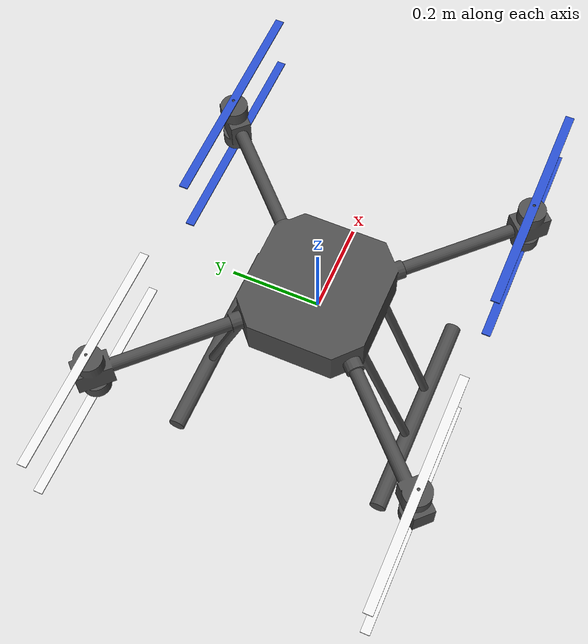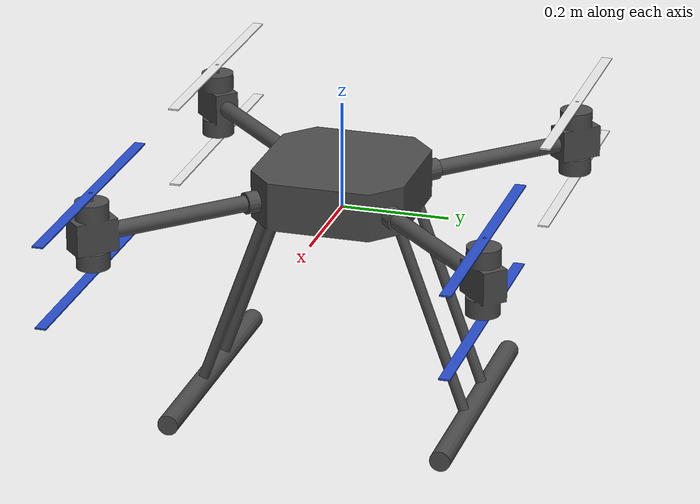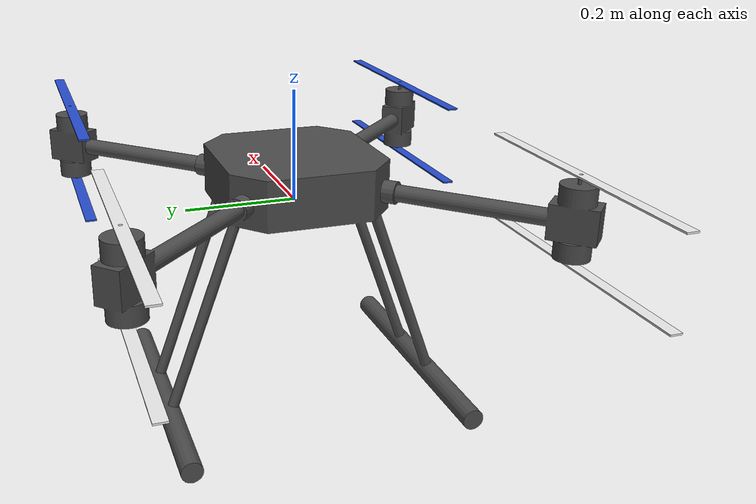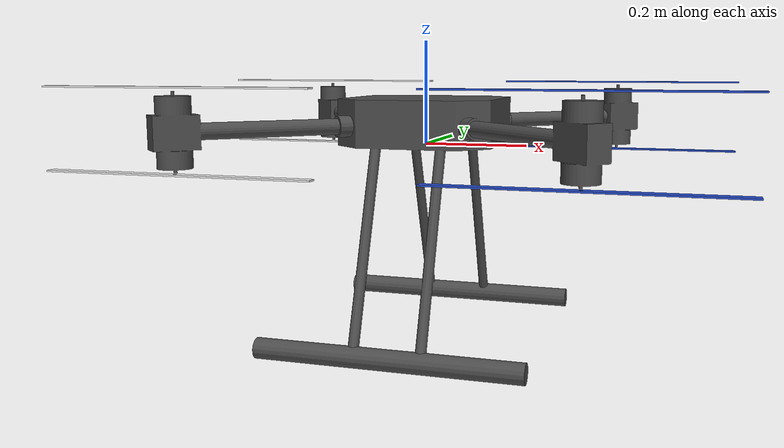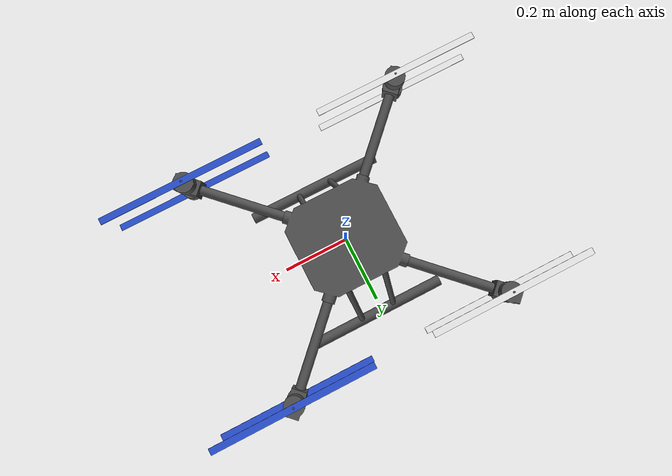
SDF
<sdf version='1.6'>
  <model name='ndt2'>
    <link name='base_link'>
      <pose frame=''>0 0 0 0 -0 0</pose>
      <inertial>
        <pose frame=''>0 0 0 0 -0 0</pose>
        <mass>9.489</mass>
        <inertia>
          <ixx>0.288861</ixx>
          <ixy>0</ixy>
          <ixz>0</ixz>
          <iyy>0.288861</iyy>
          <iyz>0</iyz>
          <izz>0.349353</izz>
        </inertia>
      </inertial>
      <collision name='base_link_inertia_collision'>
        <pose frame=''>0 0 0 0 -0 0</pose>
        <geometry>
          <mesh>
            <scale>0.001 0.001 0.001</scale>
            <uri>model://rotors_description/meshes//ndt2/chassis.stl</uri>
          </mesh>
        </geometry>
        <surface>
          <contact>
            <ode>
              <min_depth>0.001</min_depth>
              <max_vel>0</max_vel>
            </ode>
          </contact>
          <friction>
            <ode/>
          </friction>
        </surface>
      </collision>
      <visual name='base_link_inertia_visual'>
        <pose frame=''>0 0 0 0 -0 0</pose>
        <geometry>
          <mesh>
            <scale>0.001 0.001 0.001</scale>
            <uri>model://rotors_description/meshes//ndt2/chassis.stl</uri>
          </mesh>
        </geometry>
        <material>
          <script>
            <name>Gazebo/DarkGrey</name>
            <uri>file://media/materials/scripts/gazebo.material</uri>
          </script>
        </material>
      </visual>
      <velocity_decay/>
      <self_collide>1</self_collide>
      <gravity>1</gravity>
      <gravity>1</gravity>
      <velocity_decay/>
    </link>
    <link name='ndt2/imu_link'>
      <pose frame=''>0 0 0 0 -0 0</pose>
      <inertial>
        <pose frame=''>0 0 0 0 -0 0</pose>
        <mass>0.015</mass>
        <inertia>
          <ixx>1e-05</ixx>
          <ixy>0</ixy>
          <ixz>0</ixz>
          <iyy>1e-05</iyy>
          <iyz>0</iyz>
          <izz>1e-05</izz>
        </inertia>
      </inertial>
    </link>
    <joint name='ndt2/imu_joint' type='revolute'>
      <child>ndt2/imu_link</child>
      <parent>base_link</parent>
      <axis>
        <xyz>1 0 0</xyz>
        <limit>
          <lower>0</lower>
          <upper>0</upper>
          <effort>0</effort>
          <velocity>0</velocity>
        </limit>
        <dynamics>
          <spring_reference>0</spring_reference>
          <spring_stiffness>0</spring_stiffness>
        </dynamics>
        <use_parent_model_frame>1</use_parent_model_frame>
      </axis>
    </joint>
    <link name='arm_1'>
      <pose frame=''>0.224433 0.234052 0.04 0 -0 0</pose>
      <inertial>
        <pose frame=''>0.083 0.083 0 0 -0 0</pose>
        <mass>0.63</mass>
        <inertia>
          <ixx>0.006258</ixx>
          <ixy>0</ixy>
          <ixz>0</ixz>
          <iyy>0.006258</iyy>
          <iyz>0</iyz>
          <izz>0.012138</izz>
        </inertia>
      </inertial>
      <collision name='arm_1_collision'>
        <pose frame=''>-0.224433 -0.234052 -0.04 0 -0 0</pose>
        <geometry>
          <mesh>
            <scale>0.001 0.001 0.001</scale>
            <uri>model://rotors_description/meshes/ndt2/arm_1.stl</uri>
          </mesh>
        </geometry>
        <surface>
          <contact>
            <ode/>
          </contact>
          <friction>
            <ode>
              <mu>0.2</mu>
              <mu2>0.2</mu2>
            </ode>
          </friction>
        </surface>
      </collision>
      <visual name='arm_1_visual'>
        <pose frame=''>-0.224433 -0.234052 -0.04 0 -0 0</pose>
        <geometry>
          <mesh>
            <scale>0.001 0.001 0.001</scale>
            <uri>model://rotors_description/meshes/ndt2/arm_1.stl</uri>
          </mesh>
        </geometry>
        <material>
          <script>
            <name>DarkGrey</name>
            <uri>file://media/materials/scripts/gazebo.material</uri>
          </script>
        </material>
      </visual>
      <gravity>1</gravity>
      <velocity_decay/>
      <self_collide>1</self_collide>
    </link>
    <joint name='tilt_motor_1' type='revolute'>
      <child>arm_1</child>
      <parent>base_link</parent>
      <axis>
        <xyz>-0.707107 -0.707107 0</xyz>
        <limit>
          <lower>-1.57</lower>
          <upper>1.57</upper>
          <effort>30</effort>
          <velocity>1</velocity>
        </limit>
        <dynamics>
          <spring_reference>0</spring_reference>
          <spring_stiffness>0</spring_stiffness>
        </dynamics>
        <use_parent_model_frame>1</use_parent_model_frame>
      </axis>
    </joint>
    <link name='rotor_0'>
      <pose frame=''>0.345433 0.355052 0.115 0 -0 0</pose>
      <inertial>
        <pose frame=''>0 0 0 0 -0 0</pose>
        <mass>0.005</mass>
        <inertia>
          <ixx>9.75e-07</ixx>
          <ixy>0</ixy>
          <ixz>0</ixz>
          <iyy>0.00107954</iyy>
          <iyz>0</iyz>
          <izz>0.00108044</izz>
        </inertia>
      </inertial>
      <collision name='rotor_0_collision'>
        <pose frame=''>0 0 0 0 -0 0</pose>
        <geometry>
          <cylinder>
            <length>0.005</length>
            <radius>0.2545</radius>
          </cylinder>
        </geometry>
        <surface>
          <contact>
            <ode/>
          </contact>
          <friction>
            <ode/>
          </friction>
        </surface>
      </collision>
      <visual name='rotor_0_visual'>
        <pose frame=''>0 0 0 0 -0 0</pose>
        <geometry>
          <mesh>
            <scale>0.001 0.001 0.001</scale>
            <uri>model://rotors_description/meshes/ndt2/prop.stl</uri>
          </mesh>
        </geometry>
        <material>
          <script>
            <name>Gazebo/Blue</name>
            <uri>file://media/materials/scripts/gazebo.material</uri>
          </script>
        </material>
      </visual>
      <gravity>1</gravity>
      <velocity_decay/>
    </link>
    <joint name='rotor_0_joint' type='revolute'>
      <child>rotor_0</child>
      <parent>arm_1</parent>
      <axis>
        <xyz>0 0 1</xyz>
        <limit>
          <lower>-1e+16</lower>
          <upper>1e+16</upper>
        </limit>
        <dynamics>
          <spring_reference>0</spring_reference>
          <spring_stiffness>0</spring_stiffness>
        </dynamics>
        <use_parent_model_frame>1</use_parent_model_frame>
      </axis>
    </joint>
    <link name='rotor_4'>
      <pose frame=''>0.345433 0.355052 -0.035 0 -0 0</pose>
      <inertial>
        <pose frame=''>0 0 0 0 -0 0</pose>
        <mass>0.005</mass>
        <inertia>
          <ixx>9.75e-07</ixx>
          <ixy>0</ixy>
          <ixz>0</ixz>
          <iyy>0.00107954</iyy>
          <iyz>0</iyz>
          <izz>0.00108044</izz>
        </inertia>
      </inertial>
      <collision name='rotor_4_collision'>
        <pose frame=''>0 0 0 0 -0 0</pose>
        <geometry>
          <cylinder>
            <length>0.005</length>
            <radius>0.2545</radius>
          </cylinder>
        </geometry>
        <surface>
          <contact>
            <ode/>
          </contact>
          <friction>
            <ode/>
          </friction>
        </surface>
      </collision>
      <visual name='rotor_4_visual'>
        <pose frame=''>0 0 0 0 -0 0</pose>
        <geometry>
          <mesh>
            <scale>0.001 0.001 0.001</scale>
            <uri>model://rotors_description/meshes/ndt2/prop.stl</uri>
          </mesh>
        </geometry>
        <material>
          <script>
            <name>Gazebo/Blue</name>
            <uri>file://media/materials/scripts/gazebo.material</uri>
          </script>
        </material>
      </visual>
      <gravity>1</gravity>
      <velocity_decay/>
    </link>
    <joint name='rotor_4_joint' type='revolute'>
      <child>rotor_4</child>
      <parent>arm_1</parent>
      <axis>
        <xyz>0 0 1</xyz>
        <limit>
          <lower>-1e+16</lower>
          <upper>1e+16</upper>
        </limit>
        <dynamics>
          <spring_reference>0</spring_reference>
          <spring_stiffness>0</spring_stiffness>
        </dynamics>
        <use_parent_model_frame>1</use_parent_model_frame>
      </axis>
    </joint>
    <link name='arm_2'>
      <pose frame=''>-0.224433 0.234052 0.04 0 -0 0</pose>
      <inertial>
        <pose frame=''>-0.083 0.083 0 0 -0 0</pose>
        <mass>0.63</mass>
        <inertia>
          <ixx>0.006258</ixx>
          <ixy>0</ixy>
          <ixz>0</ixz>
          <iyy>0.006258</iyy>
          <iyz>0</iyz>
          <izz>0.012138</izz>
        </inertia>
      </inertial>
      <collision name='arm_2_collision'>
        <pose frame=''>0.224433 -0.234052 -0.04 0 -0 0</pose>
        <geometry>
          <mesh>
            <scale>0.001 0.001 0.001</scale>
            <uri>model://rotors_description/meshes/ndt2/arm_2.stl</uri>
          </mesh>
        </geometry>
        <surface>
          <contact>
            <ode/>
          </contact>
          <friction>
            <ode>
              <mu>0.2</mu>
              <mu2>0.2</mu2>
            </ode>
          </friction>
        </surface>
      </collision>
      <visual name='arm_2_visual'>
        <pose frame=''>0.224433 -0.234052 -0.04 0 -0 0</pose>
        <geometry>
          <mesh>
            <scale>0.001 0.001 0.001</scale>
            <uri>model://rotors_description/meshes/ndt2/arm_2.stl</uri>
          </mesh>
        </geometry>
        <material>
          <script>
            <name>DarkGrey</name>
            <uri>file://media/materials/scripts/gazebo.material</uri>
          </script>
        </material>
      </visual>
      <gravity>1</gravity>
      <velocity_decay/>
      <self_collide>1</self_collide>
    </link>
    <joint name='tilt_motor_2' type='revolute'>
      <child>arm_2</child>
      <parent>base_link</parent>
      <axis>
        <xyz>-0.707107 0.707107 0</xyz>
        <limit>
          <lower>-1.57</lower>
          <upper>1.57</upper>
          <effort>30</effort>
          <velocity>1</velocity>
        </limit>
        <dynamics>
          <spring_reference>0</spring_reference>
          <spring_stiffness>0</spring_stiffness>
        </dynamics>
        <use_parent_model_frame>1</use_parent_model_frame>
      </axis>
    </joint>
    <link name='rotor_1'>
      <pose frame=''>-0.345433 0.355052 0.115 0 -0 0</pose>
      <inertial>
        <pose frame=''>0 0 0 0 -0 0</pose>
        <mass>0.005</mass>
        <inertia>
          <ixx>9.75e-07</ixx>
          <ixy>0</ixy>
          <ixz>0</ixz>
          <iyy>0.00107954</iyy>
          <iyz>0</iyz>
          <izz>0.00108044</izz>
        </inertia>
      </inertial>
      <collision name='rotor_1_collision'>
        <pose frame=''>0 0 0 0 -0 0</pose>
        <geometry>
          <cylinder>
            <length>0.005</length>
            <radius>0.2545</radius>
          </cylinder>
        </geometry>
        <surface>
          <contact>
            <ode/>
          </contact>
          <friction>
            <ode/>
          </friction>
        </surface>
      </collision>
      <visual name='rotor_1_visual'>
        <pose frame=''>0 0 0 0 -0 0</pose>
        <geometry>
          <mesh>
            <scale>0.001 0.001 0.001</scale>
            <uri>model://rotors_description/meshes/ndt2/prop.stl</uri>
          </mesh>
        </geometry>
        <material>
          <script>
            <name>Gazebo/White</name>
            <uri>file://media/materials/scripts/gazebo.material</uri>
          </script>
        </material>
      </visual>
      <gravity>1</gravity>
      <velocity_decay/>
    </link>
    <joint name='rotor_1_joint' type='revolute'>
      <child>rotor_1</child>
      <parent>arm_2</parent>
      <axis>
        <xyz>0 0 1</xyz>
        <limit>
          <lower>-1e+16</lower>
          <upper>1e+16</upper>
        </limit>
        <dynamics>
          <spring_reference>0</spring_reference>
          <spring_stiffness>0</spring_stiffness>
        </dynamics>
        <use_parent_model_frame>1</use_parent_model_frame>
      </axis>
    </joint>
    <link name='rotor_5'>
      <pose frame=''>-0.345433 0.355052 -0.035 0 -0 0</pose>
      <inertial>
        <pose frame=''>0 0 0 0 -0 0</pose>
        <mass>0.005</mass>
        <inertia>
          <ixx>9.75e-07</ixx>
          <ixy>0</ixy>
          <ixz>0</ixz>
          <iyy>0.00107954</iyy>
          <iyz>0</iyz>
          <izz>0.00108044</izz>
        </inertia>
      </inertial>
      <collision name='rotor_5_collision'>
        <pose frame=''>0 0 0 0 -0 0</pose>
        <geometry>
          <cylinder>
            <length>0.005</length>
            <radius>0.2545</radius>
          </cylinder>
        </geometry>
        <surface>
          <contact>
            <ode/>
          </contact>
          <friction>
            <ode/>
          </friction>
        </surface>
      </collision>
      <visual name='rotor_5_visual'>
        <pose frame=''>0 0 0 0 -0 0</pose>
        <geometry>
          <mesh>
            <scale>0.001 0.001 0.001</scale>
            <uri>model://rotors_description/meshes/ndt2/prop.stl</uri>
          </mesh>
        </geometry>
        <material>
          <script>
            <name>Gazebo/White</name>
            <uri>file://media/materials/scripts/gazebo.material</uri>
          </script>
        </material>
      </visual>
      <gravity>1</gravity>
      <velocity_decay/>
    </link>
    <joint name='rotor_5_joint' type='revolute'>
      <child>rotor_5</child>
      <parent>arm_2</parent>
      <axis>
        <xyz>0 0 1</xyz>
        <limit>
          <lower>-1e+16</lower>
          <upper>1e+16</upper>
        </limit>
        <dynamics>
          <spring_reference>0</spring_reference>
          <spring_stiffness>0</spring_stiffness>
        </dynamics>
        <use_parent_model_frame>1</use_parent_model_frame>
      </axis>
    </joint>
    <link name='arm_3'>
      <pose frame=''>-0.224433 -0.234052 0.04 0 -0 0</pose>
      <inertial>
        <pose frame=''>-0.083 -0.083 0 0 -0 0</pose>
        <mass>0.63</mass>
        <inertia>
          <ixx>0.006258</ixx>
          <ixy>0</ixy>
          <ixz>0</ixz>
          <iyy>0.006258</iyy>
          <iyz>0</iyz>
          <izz>0.012138</izz>
        </inertia>
      </inertial>
      <collision name='arm_3_collision'>
        <pose frame=''>0.224433 0.234052 -0.04 0 -0 0</pose>
        <geometry>
          <mesh>
            <scale>0.001 0.001 0.001</scale>
            <uri>model://rotors_description/meshes/ndt2/arm_3.stl</uri>
          </mesh>
        </geometry>
        <surface>
          <contact>
            <ode/>
          </contact>
          <friction>
            <ode>
              <mu>0.2</mu>
              <mu2>0.2</mu2>
            </ode>
          </friction>
        </surface>
      </collision>
      <visual name='arm_3_visual'>
        <pose frame=''>0.224433 0.234052 -0.04 0 -0 0</pose>
        <geometry>
          <mesh>
            <scale>0.001 0.001 0.001</scale>
            <uri>model://rotors_description/meshes/ndt2/arm_3.stl</uri>
          </mesh>
        </geometry>
        <material>
          <script>
            <name>DarkGrey</name>
            <uri>file://media/materials/scripts/gazebo.material</uri>
          </script>
        </material>
      </visual>
      <gravity>1</gravity>
      <velocity_decay/>
      <self_collide>1</self_collide>
    </link>
    <joint name='tilt_motor_3' type='revolute'>
      <child>arm_3</child>
      <parent>base_link</parent>
      <axis>
        <xyz>0.707107 0.707107 0</xyz>
        <limit>
          <lower>-1.57</lower>
          <upper>1.57</upper>
          <effort>30</effort>
          <velocity>1</velocity>
        </limit>
        <dynamics>
          <spring_reference>0</spring_reference>
          <spring_stiffness>0</spring_stiffness>
        </dynamics>
        <use_parent_model_frame>1</use_parent_model_frame>
      </axis>
    </joint>
    <link name='rotor_2'>
      <pose frame=''>-0.345433 -0.355052 0.115 0 -0 0</pose>
      <inertial>
        <pose frame=''>0 0 0 0 -0 0</pose>
        <mass>0.005</mass>
        <inertia>
          <ixx>9.75e-07</ixx>
          <ixy>0</ixy>
          <ixz>0</ixz>
          <iyy>0.00107954</iyy>
          <iyz>0</iyz>
          <izz>0.00108044</izz>
        </inertia>
      </inertial>
      <collision name='rotor_2_collision'>
        <pose frame=''>0 0 0 0 -0 0</pose>
        <geometry>
          <cylinder>
            <length>0.005</length>
            <radius>0.2545</radius>
          </cylinder>
        </geometry>
        <surface>
          <contact>
            <ode/>
          </contact>
          <friction>
            <ode/>
          </friction>
        </surface>
      </collision>
      <visual name='rotor_2_visual'>
        <pose frame=''>0 0 0 0 -0 0</pose>
        <geometry>
          <mesh>
            <scale>0.001 0.001 0.001</scale>
            <uri>model://rotors_description/meshes/ndt2/prop.stl</uri>
          </mesh>
        </geometry>
        <material>
          <script>
            <name>Gazebo/White</name>
            <uri>file://media/materials/scripts/gazebo.material</uri>
          </script>
        </material>
      </visual>
      <gravity>1</gravity>
      <velocity_decay/>
    </link>
    <joint name='rotor_2_joint' type='revolute'>
      <child>rotor_2</child>
      <parent>arm_3</parent>
      <axis>
        <xyz>0 0 1</xyz>
        <limit>
          <lower>-1e+16</lower>
          <upper>1e+16</upper>
        </limit>
        <dynamics>
          <spring_reference>0</spring_reference>
          <spring_stiffness>0</spring_stiffness>
        </dynamics>
        <use_parent_model_frame>1</use_parent_model_frame>
      </axis>
    </joint>
    <link name='rotor_6'>
      <pose frame=''>-0.345433 -0.355052 -0.035 0 -0 0</pose>
      <inertial>
        <pose frame=''>0 0 0 0 -0 0</pose>
        <mass>0.005</mass>
        <inertia>
          <ixx>9.75e-07</ixx>
          <ixy>0</ixy>
          <ixz>0</ixz>
          <iyy>0.00107954</iyy>
          <iyz>0</iyz>
          <izz>0.00108044</izz>
        </inertia>
      </inertial>
      <collision name='rotor_6_collision'>
        <pose frame=''>0 0 0 0 -0 0</pose>
        <geometry>
          <cylinder>
            <length>0.005</length>
            <radius>0.2545</radius>
          </cylinder>
        </geometry>
        <surface>
          <contact>
            <ode/>
          </contact>
          <friction>
            <ode/>
          </friction>
        </surface>
      </collision>
      <visual name='rotor_6_visual'>
        <pose frame=''>0 0 0 0 -0 0</pose>
        <geometry>
          <mesh>
            <scale>0.001 0.001 0.001</scale>
            <uri>model://rotors_description/meshes/ndt2/prop.stl</uri>
          </mesh>
        </geometry>
        <material>
          <script>
            <name>Gazebo/White</name>
            <uri>file://media/materials/scripts/gazebo.material</uri>
          </script>
        </material>
      </visual>
      <gravity>1</gravity>
      <velocity_decay/>
    </link>
    <joint name='rotor_6_joint' type='revolute'>
      <child>rotor_6</child>
      <parent>arm_3</parent>
      <axis>
        <xyz>0 0 1</xyz>
        <limit>
          <lower>-1e+16</lower>
          <upper>1e+16</upper>
        </limit>
        <dynamics>
          <spring_reference>0</spring_reference>
          <spring_stiffness>0</spring_stiffness>
        </dynamics>
        <use_parent_model_frame>1</use_parent_model_frame>
      </axis>
    </joint>
    <link name='arm_4'>
      <pose frame=''>0.224433 -0.234052 0.04 0 -0 0</pose>
      <inertial>
        <pose frame=''>0.083 -0.083 0 0 -0 0</pose>
        <mass>0.63</mass>
        <inertia>
          <ixx>0.006258</ixx>
          <ixy>0</ixy>
          <ixz>0</ixz>
          <iyy>0.006258</iyy>
          <iyz>0</iyz>
          <izz>0.012138</izz>
        </inertia>
      </inertial>
      <collision name='arm_4_collision'>
        <pose frame=''>-0.224433 0.234052 -0.04 0 -0 0</pose>
        <geometry>
          <mesh>
            <scale>0.001 0.001 0.001</scale>
            <uri>model://rotors_description/meshes/ndt2/arm_4.stl</uri>
          </mesh>
        </geometry>
        <surface>
          <contact>
            <ode/>
          </contact>
          <friction>
            <ode>
              <mu>0.2</mu>
              <mu2>0.2</mu2>
            </ode>
          </friction>
        </surface>
      </collision>
      <visual name='arm_4_visual'>
        <pose frame=''>-0.224433 0.234052 -0.04 0 -0 0</pose>
        <geometry>
          <mesh>
            <scale>0.001 0.001 0.001</scale>
            <uri>model://rotors_description/meshes/ndt2/arm_4.stl</uri>
          </mesh>
        </geometry>
        <material>
          <script>
            <name>DarkGrey</name>
            <uri>file://media/materials/scripts/gazebo.material</uri>
          </script>
        </material>
      </visual>
      <gravity>1</gravity>
      <velocity_decay/>
      <self_collide>1</self_collide>
    </link>
    <joint name='tilt_motor_4' type='revolute'>
      <child>arm_4</child>
      <parent>base_link</parent>
      <axis>
        <xyz>-0.707107 0.707107 0</xyz>
        <limit>
          <lower>-1.57</lower>
          <upper>1.57</upper>
          <effort>30</effort>
          <velocity>1</velocity>
        </limit>
        <dynamics>
          <spring_reference>0</spring_reference>
          <spring_stiffness>0</spring_stiffness>
        </dynamics>
        <use_parent_model_frame>1</use_parent_model_frame>
      </axis>
    </joint>
    <link name='rotor_3'>
      <pose frame=''>0.345433 -0.355052 0.115 0 -0 0</pose>
      <inertial>
        <pose frame=''>0 0 0 0 -0 0</pose>
        <mass>0.005</mass>
        <inertia>
          <ixx>9.75e-07</ixx>
          <ixy>0</ixy>
          <ixz>0</ixz>
          <iyy>0.00107954</iyy>
          <iyz>0</iyz>
          <izz>0.00108044</izz>
        </inertia>
      </inertial>
      <collision name='rotor_3_collision'>
        <pose frame=''>0 0 0 0 -0 0</pose>
        <geometry>
          <cylinder>
            <length>0.005</length>
            <radius>0.2545</radius>
          </cylinder>
        </geometry>
        <surface>
          <contact>
            <ode/>
          </contact>
          <friction>
            <ode/>
          </friction>
        </surface>
      </collision>
      <visual name='rotor_3_visual'>
        <pose frame=''>0 0 0 0 -0 0</pose>
        <geometry>
          <mesh>
            <scale>0.001 0.001 0.001</scale>
            <uri>model://rotors_description/meshes/ndt2/prop.stl</uri>
          </mesh>
        </geometry>
        <material>
          <script>
            <name>Gazebo/Blue</name>
            <uri>file://media/materials/scripts/gazebo.material</uri>
          </script>
        </material>
      </visual>
      <gravity>1</gravity>
      <velocity_decay/>
    </link>
    <joint name='rotor_3_joint' type='revolute'>
      <child>rotor_3</child>
      <parent>arm_4</parent>
      <axis>
        <xyz>0 0 1</xyz>
        <limit>
          <lower>-1e+16</lower>
          <upper>1e+16</upper>
        </limit>
        <dynamics>
          <spring_reference>0</spring_reference>
          <spring_stiffness>0</spring_stiffness>
        </dynamics>
        <use_parent_model_frame>1</use_parent_model_frame>
      </axis>
    </joint>
    <link name='rotor_7'>
      <pose frame=''>0.345433 -0.355052 -0.035 0 -0 0</pose>
      <inertial>
        <pose frame=''>0 0 0 0 -0 0</pose>
        <mass>0.005</mass>
        <inertia>
          <ixx>9.75e-07</ixx>
          <ixy>0</ixy>
          <ixz>0</ixz>
          <iyy>0.00107954</iyy>
          <iyz>0</iyz>
          <izz>0.00108044</izz>
        </inertia>
      </inertial>
      <collision name='rotor_7_collision'>
        <pose frame=''>0 0 0 0 -0 0</pose>
        <geometry>
          <cylinder>
            <length>0.005</length>
            <radius>0.2545</radius>
          </cylinder>
        </geometry>
        <surface>
          <contact>
            <ode/>
          </contact>
          <friction>
            <ode/>
          </friction>
        </surface>
      </collision>
      <visual name='rotor_7_visual'>
        <pose frame=''>0 0 0 0 -0 0</pose>
        <geometry>
          <mesh>
            <scale>0.001 0.001 0.001</scale>
            <uri>model://rotors_description/meshes/ndt2/prop.stl</uri>
          </mesh>
        </geometry>
        <material>
          <script>
            <name>Gazebo/Blue</name>
            <uri>file://media/materials/scripts/gazebo.material</uri>
          </script>
        </material>
      </visual>
      <gravity>1</gravity>
      <velocity_decay/>
    </link>
    <joint name='rotor_7_joint' type='revolute'>
      <child>rotor_7</child>
      <parent>arm_4</parent>
      <axis>
        <xyz>0 0 1</xyz>
        <limit>
          <lower>-1e+16</lower>
          <upper>1e+16</upper>
        </limit>
        <dynamics>
          <spring_reference>0</spring_reference>
          <spring_stiffness>0</spring_stiffness>
        </dynamics>
        <use_parent_model_frame>1</use_parent_model_frame>
      </axis>
    </joint>
    <plugin name='control' filename='libgazebo_ros_control.so'/>
    <plugin name='rosbag' filename='libgazebo_multirotor_base_plugin.so'>
      <robotNamespace>ndt2</robotNamespace>
      <linkName>base_link</linkName>
      <rotorVelocitySlowdownSim>10</rotorVelocitySlowdownSim>
    </plugin>
    <plugin name='0_motor_model' filename='libgazebo_motor_model.so'>
      <robotNamespace>ndt2</robotNamespace>
      <jointName>rotor_0_joint</jointName>
      <linkName>rotor_0</linkName>
      <turningDirection>cw</turningDirection>
      <timeConstantUp>0.0125</timeConstantUp>
      <timeConstantDown>0.025</timeConstantDown>
      <maxRotVelocity>5000</maxRotVelocity>
      <motorConstant>0.00019065</motorConstant>
      <momentConstant>1.333e-06</momentConstant>
      <commandSubTopic>/gazebo/command/motor_speed</commandSubTopic>
      <motorNumber>0</motorNumber>
      <rotorDragCoefficient>0.000175</rotorDragCoefficient>
      <rollingMomentCoefficient>1e-06</rollingMomentCoefficient>
      <motorSpeedPubTopic>/motor_speed/0</motorSpeedPubTopic>
      <rotorVelocitySlowdownSim>10</rotorVelocitySlowdownSim>
    </plugin>
    <plugin name='1_motor_model' filename='libgazebo_motor_model.so'>
      <robotNamespace>ndt2</robotNamespace>
      <jointName>rotor_1_joint</jointName>
      <linkName>rotor_1</linkName>
      <turningDirection>cw</turningDirection>
      <timeConstantUp>0.0125</timeConstantUp>
      <timeConstantDown>0.025</timeConstantDown>
      <maxRotVelocity>5000</maxRotVelocity>
      <motorConstant>0.00019065</motorConstant>
      <momentConstant>1.333e-06</momentConstant>
      <commandSubTopic>/gazebo/command/motor_speed</commandSubTopic>
      <motorNumber>1</motorNumber>
      <rotorDragCoefficient>0.000175</rotorDragCoefficient>
      <rollingMomentCoefficient>1e-06</rollingMomentCoefficient>
      <motorSpeedPubTopic>/motor_speed/1</motorSpeedPubTopic>
      <rotorVelocitySlowdownSim>10</rotorVelocitySlowdownSim>
    </plugin>
    <plugin name='2_motor_model' filename='libgazebo_motor_model.so'>
      <robotNamespace>ndt2</robotNamespace>
      <jointName>rotor_2_joint</jointName>
      <linkName>rotor_2</linkName>
      <turningDirection>cw</turningDirection>
      <timeConstantUp>0.0125</timeConstantUp>
      <timeConstantDown>0.025</timeConstantDown>
      <maxRotVelocity>5000</maxRotVelocity>
      <motorConstant>0.00019065</motorConstant>
      <momentConstant>1.333e-06</momentConstant>
      <commandSubTopic>/gazebo/command/motor_speed</commandSubTopic>
      <motorNumber>2</motorNumber>
      <rotorDragCoefficient>0.000175</rotorDragCoefficient>
      <rollingMomentCoefficient>1e-06</rollingMomentCoefficient>
      <motorSpeedPubTopic>/motor_speed/2</motorSpeedPubTopic>
      <rotorVelocitySlowdownSim>10</rotorVelocitySlowdownSim>
    </plugin>
    <plugin name='3_motor_model' filename='libgazebo_motor_model.so'>
      <robotNamespace>ndt2</robotNamespace>
      <jointName>rotor_3_joint</jointName>
      <linkName>rotor_3</linkName>
      <turningDirection>cw</turningDirection>
      <timeConstantUp>0.0125</timeConstantUp>
      <timeConstantDown>0.025</timeConstantDown>
      <maxRotVelocity>5000</maxRotVelocity>
      <motorConstant>0.00019065</motorConstant>
      <momentConstant>1.333e-06</momentConstant>
      <commandSubTopic>/gazebo/command/motor_speed</commandSubTopic>
      <motorNumber>3</motorNumber>
      <rotorDragCoefficient>0.000175</rotorDragCoefficient>
      <rollingMomentCoefficient>1e-06</rollingMomentCoefficient>
      <motorSpeedPubTopic>/motor_speed/3</motorSpeedPubTopic>
      <rotorVelocitySlowdownSim>10</rotorVelocitySlowdownSim>
    </plugin>
    <plugin name='4_motor_model' filename='libgazebo_motor_model.so'>
      <robotNamespace>ndt2</robotNamespace>
      <jointName>rotor_4_joint</jointName>
      <linkName>rotor_4</linkName>
      <turningDirection>ccw</turningDirection>
      <timeConstantUp>0.0125</timeConstantUp>
      <timeConstantDown>0.025</timeConstantDown>
      <maxRotVelocity>5000</maxRotVelocity>
      <motorConstant>0.00019065</motorConstant>
      <momentConstant>1.333e-06</momentConstant>
      <commandSubTopic>/gazebo/command/motor_speed</commandSubTopic>
      <motorNumber>4</motorNumber>
      <rotorDragCoefficient>0.000175</rotorDragCoefficient>
      <rollingMomentCoefficient>1e-06</rollingMomentCoefficient>
      <motorSpeedPubTopic>/motor_speed/4</motorSpeedPubTopic>
      <rotorVelocitySlowdownSim>10</rotorVelocitySlowdownSim>
    </plugin>
    <plugin name='5_motor_model' filename='libgazebo_motor_model.so'>
      <robotNamespace>ndt2</robotNamespace>
      <jointName>rotor_5_joint</jointName>
      <linkName>rotor_5</linkName>
      <turningDirection>ccw</turningDirection>
      <timeConstantUp>0.0125</timeConstantUp>
      <timeConstantDown>0.025</timeConstantDown>
      <maxRotVelocity>5000</maxRotVelocity>
      <motorConstant>0.00019065</motorConstant>
      <momentConstant>1.333e-06</momentConstant>
      <commandSubTopic>/gazebo/command/motor_speed</commandSubTopic>
      <motorNumber>5</motorNumber>
      <rotorDragCoefficient>0.000175</rotorDragCoefficient>
      <rollingMomentCoefficient>1e-06</rollingMomentCoefficient>
      <motorSpeedPubTopic>/motor_speed/5</motorSpeedPubTopic>
      <rotorVelocitySlowdownSim>10</rotorVelocitySlowdownSim>
    </plugin>
    <plugin name='6_motor_model' filename='libgazebo_motor_model.so'>
      <robotNamespace>ndt2</robotNamespace>
      <jointName>rotor_6_joint</jointName>
      <linkName>rotor_6</linkName>
      <turningDirection>ccw</turningDirection>
      <timeConstantUp>0.0125</timeConstantUp>
      <timeConstantDown>0.025</timeConstantDown>
      <maxRotVelocity>5000</maxRotVelocity>
      <motorConstant>0.00019065</motorConstant>
      <momentConstant>1.333e-06</momentConstant>
      <commandSubTopic>/gazebo/command/motor_speed</commandSubTopic>
      <motorNumber>6</motorNumber>
      <rotorDragCoefficient>0.000175</rotorDragCoefficient>
      <rollingMomentCoefficient>1e-06</rollingMomentCoefficient>
      <motorSpeedPubTopic>/motor_speed/6</motorSpeedPubTopic>
      <rotorVelocitySlowdownSim>10</rotorVelocitySlowdownSim>
    </plugin>
    <plugin name='7_motor_model' filename='libgazebo_motor_model.so'>
      <robotNamespace>ndt2</robotNamespace>
      <jointName>rotor_7_joint</jointName>
      <linkName>rotor_7</linkName>
      <turningDirection>ccw</turningDirection>
      <timeConstantUp>0.0125</timeConstantUp>
      <timeConstantDown>0.025</timeConstantDown>
      <maxRotVelocity>5000</maxRotVelocity>
      <motorConstant>0.00019065</motorConstant>
      <momentConstant>1.333e-06</momentConstant>
      <commandSubTopic>/gazebo/command/motor_speed</commandSubTopic>
      <motorNumber>7</motorNumber>
      <rotorDragCoefficient>0.000175</rotorDragCoefficient>
      <rollingMomentCoefficient>1e-06</rollingMomentCoefficient>
      <motorSpeedPubTopic>/motor_speed/7</motorSpeedPubTopic>
      <rotorVelocitySlowdownSim>10</rotorVelocitySlowdownSim>
    </plugin>
    <plugin name='gps_plugin' filename='libgazebo_gps_plugin.so'>
      <robotNamespace>ndt2</robotNamespace>
      <gpsNoise>1</gpsNoise>
    </plugin>
    <plugin name='magnetometer_plugin' filename='libgazebo_magnetometer_plugin.so'>
      <robotNamespace>ndt2</robotNamespace>
      <pubRate>100</pubRate>
      <noiseDensity>0.0004</noiseDensity>
      <randomWalk>6.4e-06</randomWalk>
      <biasCorrelationTime>600</biasCorrelationTime>
      <magTopic>/mag</magTopic>
    </plugin>
    <plugin name='barometer_plugin' filename='libgazebo_barometer_plugin.so'>
      <robotNamespace>ndt2</robotNamespace>
      <pubRate>50</pubRate>
      <baroTopic>/baro</baroTopic>
    </plugin>
    <plugin name='ros_interface' filename='libgazebo_ros_interface.so'>
      <robotNamespace>ndt2</robotNamespace>
      <imuSubTopic>/imu</imuSubTopic>
      <gpsSubTopic>/gps</gpsSubTopic>
      <odomFrame>NED</odomFrame>
      <motorSize>8</motorSize>
      <motorSpeedCommandPubTopic>/gazebo/command/motor_speed</motorSpeedCommandPubTopic>
      <control_channels>
        <channel name='rotor1'>
          <input_index>0</input_index>
          <input_offset>0</input_offset>
          <input_scaling>1000</input_scaling>
          <zero_position_disarmed>0</zero_position_disarmed>
          <zero_position_armed>100</zero_position_armed>
          <joint_control_type>velocity</joint_control_type>
        </channel>
        <channel name='rotor2'>
          <input_index>1</input_index>
          <input_offset>0</input_offset>
          <input_scaling>1000</input_scaling>
          <zero_position_disarmed>0</zero_position_disarmed>
          <zero_position_armed>100</zero_position_armed>
          <joint_control_type>velocity</joint_control_type>
        </channel>
        <channel name='rotor3'>
          <input_index>2</input_index>
          <input_offset>0</input_offset>
          <input_scaling>1000</input_scaling>
          <zero_position_disarmed>0</zero_position_disarmed>
          <zero_position_armed>100</zero_position_armed>
          <joint_control_type>velocity</joint_control_type>
        </channel>
        <channel name='rotor4'>
          <input_index>3</input_index>
          <input_offset>0</input_offset>
          <input_scaling>1000</input_scaling>
          <zero_position_disarmed>0</zero_position_disarmed>
          <zero_position_armed>100</zero_position_armed>
          <joint_control_type>velocity</joint_control_type>
        </channel>
        <channel name='rotor5'>
          <input_index>4</input_index>
          <input_offset>1</input_offset>
          <input_scaling>324.6</input_scaling>
          <zero_position_disarmed>0</zero_position_disarmed>
          <zero_position_armed>0</zero_position_armed>
          <joint_control_type>velocity</joint_control_type>
          <joint_control_pid>
            <p>0.1</p>
            <i>0</i>
            <d>0</d>
            <iMax>0.0</iMax>
            <iMin>0.0</iMin>
            <cmdMax>2</cmdMax>
            <cmdMin>-2</cmdMin>
          </joint_control_pid>
          <joint_name>zephyr_delta_wing::propeller_joint</joint_name>
        </channel>
        <channel name='rotor6'>
          <input_index>5</input_index>
          <input_offset>0</input_offset>
          <input_scaling>0.524</input_scaling>
          <zero_position_disarmed>0</zero_position_disarmed>
          <zero_position_armed>0</zero_position_armed>
          <joint_control_type>position</joint_control_type>
          <joint_name>zephyr_delta_wing::flap_left_joint</joint_name>
          <joint_control_pid>
            <p>10.0</p>
            <i>0</i>
            <d>0</d>
            <iMax>0</iMax>
            <iMin>0</iMin>
            <cmdMax>20</cmdMax>
            <cmdMin>-20</cmdMin>
          </joint_control_pid>
        </channel>
        <channel name='rotor7'>
          <input_index>6</input_index>
          <input_offset>0</input_offset>
          <input_scaling>0.524</input_scaling>
          <zero_position_disarmed>0</zero_position_disarmed>
          <zero_position_armed>0</zero_position_armed>
          <joint_control_type>position</joint_control_type>
          <joint_name>zephyr_delta_wing::flap_right_joint</joint_name>
          <joint_control_pid>
            <p>10.0</p>
            <i>0</i>
            <d>0</d>
            <iMax>0</iMax>
            <iMin>0</iMin>
            <cmdMax>20</cmdMax>
            <cmdMin>-20</cmdMin>
          </joint_control_pid>
        </channel>
        <channel name='rotor8'>
          <input_index>7</input_index>
          <input_offset>0</input_offset>
          <input_scaling>0.524</input_scaling>
          <zero_position_disarmed>0</zero_position_disarmed>
          <zero_position_armed>0</zero_position_armed>
          <joint_control_type>position</joint_control_type>
        </channel>
      </control_channels>
    </plugin>
    <plugin name='rotors_gazebo_imu_plugin' filename='libgazebo_imu_plugin.so'>
      <robotNamespace>ndt2</robotNamespace>
      <linkName>ndt2/imu_link</linkName>
      <imuTopic>/imu</imuTopic>
      <gyroscopeNoiseDensity>0.00018665</gyroscopeNoiseDensity>
      <gyroscopeRandomWalk>3.8785e-05</gyroscopeRandomWalk>
      <gyroscopeBiasCorrelationTime>1000.0</gyroscopeBiasCorrelationTime>
      <gyroscopeTurnOnBiasSigma>0.0087</gyroscopeTurnOnBiasSigma>
      <accelerometerNoiseDensity>0.00186</accelerometerNoiseDensity>
      <accelerometerRandomWalk>0.006</accelerometerRandomWalk>
      <accelerometerBiasCorrelationTime>300.0</accelerometerBiasCorrelationTime>
      <accelerometerTurnOnBiasSigma>0.196</accelerometerTurnOnBiasSigma>
    </plugin>
    <static>0</static>
    <plugin name='gazebo_ros_control' filename='libgazebo_ros_control.so'>
      <robotNamespace>ndt2</robotNamespace>
      <legacyModeNS>1</legacyModeNS>
    </plugin>
  </model>
</sdf>
